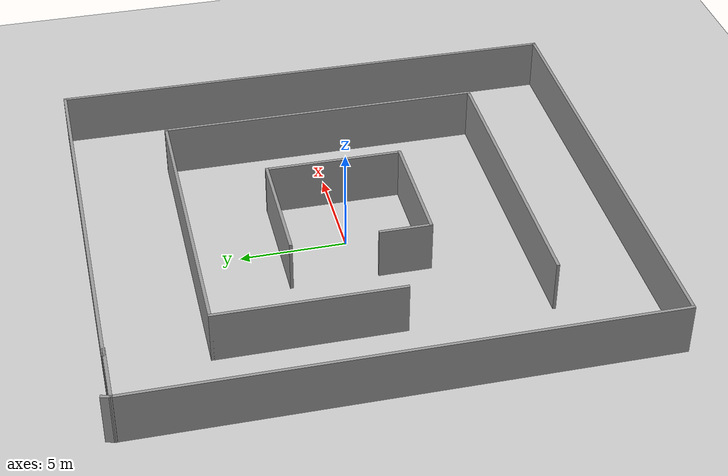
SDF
<sdf version="1.7">
 <world name="default">
  <light name="sun" type="directional">
   <pose>0 0 10 0 -0 0</pose>
   <diffuse>0.8 0.8 0.8 1</diffuse>
   <specular>0.2 0.2 0.2 1</specular>
   <attenuation>
    <range>1000</range>
    <constant>0.9</constant>
    <linear>0.01</linear>
    <quadratic>0.001</quadratic>
   </attenuation>
   <direction>-0.5 0.1 -0.9</direction>
   <spot><inner_angle>0</inner_angle><outer_angle>0</outer_angle><falloff>0</falloff></spot>
  </light>
  <model name="ground_plane">
   <static>1</static>
   <link name="link">
    <collision name="collision">
     <geometry><plane><normal>0 0 1</normal><size>100 100</size></plane></geometry>
     <surface><friction><ode><mu>100</mu><mu2>50</mu2></ode></friction></surface>
    </collision>
    <visual name="visual">
     <cast_shadows>0</cast_shadows>
     <geometry><plane><normal>0 0 1</normal><size>100 100</size></plane></geometry>
     <material>
      <script><uri>file://media/materials/scripts/gazebo.material</uri><name>Gazebo/Grey</name></script>
     </material>
    </visual>
   </link>
  </model>
  <gravity>0 0 -9.8</gravity>
  <magnetic_field>6e-06 2.3e-05 -4.2e-05</magnetic_field>
  <atmosphere type="adiabatic"/>
  <physics type="ode">
   <max_step_size>0.001</max_step_size>
   <real_time_factor>1</real_time_factor>
   <real_time_update_rate>1000</real_time_update_rate>
  </physics>
  <scene><ambient>0.4 0.4 0.4 1</ambient><background>0.7 0.7 0.7 1</background><shadows>1</shadows></scene>
  <spherical_coordinates>
   <surface_model>EARTH_WGS84</surface_model>
   <latitude_deg>0</latitude_deg>
   <longitude_deg>0</longitude_deg>
   <elevation>0</elevation>
   <heading_deg>0</heading_deg>
  </spherical_coordinates>
  <model name="optima_env02_clone">
   <pose>0.481411 -0.273219 0 0 -0 1.56452</pose>
   <link name="Wall_0">
    <collision name="Wall_0_Collision">
     <geometry><box><size>6 0.15 2.5</size></box></geometry>
     <pose>0 0 1.25 0 -0 0</pose>
    </collision>
    <visual name="Wall_0_Visual">
     <pose>0 0 1.25 0 -0 0</pose>
     <geometry><box><size>6 0.15 2.5</size></box></geometry>
     <material>
      <script><uri>file://media/materials/scripts/gazebo.material</uri><name>Gazebo/Grey</name></script>
      <ambient>1 1 1 1</ambient>
     </material>
     <meta><layer>0</layer></meta>
    </visual>
    <pose>-3.12276 0.089658 0 0 -0 1.5708</pose>
   </link>
   <link name="Wall_1">
    <collision name="Wall_1_Collision">
     <geometry><box><size>0.15 0.15 2.5</size></box></geometry>
     <pose>0 0 1.25 0 -0 0</pose>
    </collision>
    <visual name="Wall_1_Visual">
     <pose>0 0 1.25 0 -0 0</pose>
     <geometry><box><size>0.15 0.15 2.5</size></box></geometry>
     <material>
      <script><uri>file://media/materials/scripts/gazebo.material</uri><name>Gazebo/Grey</name></script>
      <ambient>1 1 1 1</ambient>
     </material>
     <meta><layer>0</layer></meta>
    </visual>
    <pose>-3.12276 3.01466 0 0 -0 0</pose>
   </link>
   <link name="Wall_10">
    <collision name="Wall_10_Collision">
     <geometry><box><size>14.25 0.15 2.5</size></box></geometry>
     <pose>0 0 1.25 0 -0 0</pose>
    </collision>
    <visual name="Wall_10_Visual">
     <pose>0 0 1.25 0 -0 0</pose>
     <geometry><box><size>14.25 0.15 2.5</size></box></geometry>
     <material>
      <script><uri>file://media/materials/scripts/gazebo.material</uri><name>Gazebo/Grey</name></script>
      <ambient>1 1 1 1</ambient>
     </material>
     <meta><layer>0</layer></meta>
    </visual>
    <pose>-7.78468 -0.071567 0 0 -0 1.5708</pose>
   </link>
   <link name="Wall_13">
    <collision name="Wall_13_Collision">
     <geometry><box><size>19.5 0.15 2.5</size></box></geometry>
     <pose>0 0 1.25 0 -0 0</pose>
    </collision>
    <visual name="Wall_13_Visual">
     <pose>0 0 1.25 0 -0 0</pose>
     <geometry><box><size>19.5 0.15 2.5</size></box></geometry>
     <material>
      <script><uri>file://media/materials/scripts/gazebo.material</uri><name>Gazebo/Grey</name></script>
      <ambient>1 1 1 1</ambient>
     </material>
     <meta><layer>0</layer></meta>
    </visual>
    <pose>12.1628 -1.22334 0 0 -0 -1.5708</pose>
   </link>
   <link name="Wall_14">
    <collision name="Wall_14_Collision">
     <geometry><box><size>24.7905 0.15 2.5</size></box></geometry>
     <pose>0 0 1.25 0 -0 0</pose>
    </collision>
    <visual name="Wall_14_Visual">
     <pose>0 0 1.25 0 -0 0</pose>
     <geometry><box><size>24.7905 0.15 2.5</size></box></geometry>
     <material>
      <script><uri>file://media/materials/scripts/gazebo.material</uri><name>Gazebo/Grey</name></script>
      <ambient>1 1 1 1</ambient>
     </material>
     <meta><layer>0</layer></meta>
    </visual>
    <pose>-0.157225 -10.9333 0 0 -0 3.13875</pose>
   </link>
   <link name="Wall_15">
    <collision name="Wall_15_Collision">
     <geometry><box><size>22 0.15 2.5</size></box></geometry>
     <pose>0 0 1.25 0 -0 0</pose>
    </collision>
    <visual name="Wall_15_Visual">
     <pose>0 0 1.25 0 -0 0</pose>
     <geometry><box><size>22 0.15 2.5</size></box></geometry>
     <material>
      <script><uri>file://media/materials/scripts/gazebo.material</uri><name>Gazebo/Grey</name></script>
      <ambient>1 1 1 1</ambient>
     </material>
     <meta><layer>0</layer></meta>
    </visual>
    <pose>-12.4773 0.026659 0 0 -0 1.5708</pose>
   </link>
   <link name="Wall_16">
    <collision name="Wall_16_Collision">
     <geometry><box><size>24.75 0.15 2.5</size></box></geometry>
     <pose>0 0 1.25 0 -0 0</pose>
    </collision>
    <visual name="Wall_16_Visual">
     <pose>0 0 1.25 0 -0 0</pose>
     <geometry><box><size>24.75 0.15 2.5</size></box></geometry>
     <material>
      <script><uri>file://media/materials/scripts/gazebo.material</uri><name>Gazebo/Grey</name></script>
      <ambient>1 1 1 1</ambient>
     </material>
     <meta><layer>0</layer></meta>
    </visual>
    <pose>-0.177285 10.9517 0 0 -0 0</pose>
   </link>
   <link name="Wall_17">
    <collision name="Wall_17_Collision">
     <geometry><box><size>0.5 0.15 2.5</size></box></geometry>
     <pose>0 0 1.25 0 -0 0</pose>
    </collision>
    <visual name="Wall_17_Visual">
     <pose>0 0 1.25 0 -0 0</pose>
     <geometry><box><size>0.5 0.15 2.5</size></box></geometry>
     <material>
      <script><uri>file://media/materials/scripts/gazebo.material</uri><name>Gazebo/Grey</name></script>
      <ambient>1 1 1 1</ambient>
     </material>
     <meta><layer>0</layer></meta>
    </visual>
    <pose>12.2918 10.9064 0 0 -0 -0.261799</pose>
   </link>
   <link name="Wall_2">
    <collision name="Wall_2_Collision">
     <geometry><box><size>2.5 0.15 2.5</size></box></geometry>
     <pose>0 0 1.25 0 -0 0</pose>
    </collision>
    <visual name="Wall_2_Visual">
     <pose>0 0 1.25 0 -0 0</pose>
     <geometry><box><size>2.5 0.15 2.5</size></box></geometry>
     <material>
      <script><uri>file://media/materials/scripts/gazebo.material</uri><name>Gazebo/Grey</name></script>
      <ambient>1 1 1 1</ambient>
     </material>
     <meta><layer>0</layer></meta>
    </visual>
    <pose>-1.94776 3.01466 0 0 -0 0</pose>
   </link>
   <link name="Wall_20">
    <collision name="Wall_20_Collision">
     <geometry><box><size>3 0.15 2.5</size></box></geometry>
     <pose>0 0 1.25 0 -0 0</pose>
    </collision>
    <visual name="Wall_20_Visual">
     <pose>0 0 1.25 0 -0 0</pose>
     <geometry><box><size>3 0.15 2.5</size></box></geometry>
     <material>
      <script><uri>file://media/materials/scripts/gazebo.material</uri><name>Gazebo/Grey</name></script>
      <ambient>1 1 1 1</ambient>
     </material>
     <meta><layer>0</layer></meta>
    </visual>
    <pose>12.1227 9.52666 0 0 -0 -1.5708</pose>
   </link>
   <link name="Wall_4">
    <collision name="Wall_4_Collision">
     <geometry><box><size>6 0.15 2.5</size></box></geometry>
     <pose>0 0 1.25 0 -0 0</pose>
    </collision>
    <visual name="Wall_4_Visual">
     <pose>0 0 1.25 0 -0 0</pose>
     <geometry><box><size>6 0.15 2.5</size></box></geometry>
     <material>
      <script><uri>file://media/materials/scripts/gazebo.material</uri><name>Gazebo/Grey</name></script>
      <ambient>1 1 1 1</ambient>
     </material>
     <meta><layer>0</layer></meta>
    </visual>
    <pose>3.34402 0.096282 0 0 -0 -1.5708</pose>
   </link>
   <link name="Wall_5">
    <collision name="Wall_5_Collision">
     <geometry><box><size>6.5 0.15 2.5</size></box></geometry>
     <pose>0 0 1.25 0 -0 0</pose>
    </collision>
    <visual name="Wall_5_Visual">
     <pose>0 0 1.25 0 -0 0</pose>
     <geometry><box><size>6.5 0.15 2.5</size></box></geometry>
     <material>
      <script><uri>file://media/materials/scripts/gazebo.material</uri><name>Gazebo/Grey</name></script>
      <ambient>1 1 1 1</ambient>
     </material>
     <meta><layer>0</layer></meta>
    </visual>
    <pose>0.169018 -2.82872 0 0 -0 3.14159</pose>
   </link>
   <link name="Wall_7">
    <collision name="Wall_7_Collision">
     <geometry><box><size>8.75 0.15 2.5</size></box></geometry>
     <pose>0 0 1.25 0 -0 0</pose>
    </collision>
    <visual name="Wall_7_Visual">
     <pose>0 0 1.25 0 -0 0</pose>
     <geometry><box><size>8.75 0.15 2.5</size></box></geometry>
     <material>
      <script><uri>file://media/materials/scripts/gazebo.material</uri><name>Gazebo/Grey</name></script>
      <ambient>1 1 1 1</ambient>
     </material>
     <meta><layer>0</layer></meta>
    </visual>
    <pose>3.26532 6.97843 0 0 -0 0</pose>
   </link>
   <link name="Wall_8">
    <collision name="Wall_8_Collision">
     <geometry><box><size>14.25 0.15 2.5</size></box></geometry>
     <pose>0 0 1.25 0 -0 0</pose>
    </collision>
    <visual name="Wall_8_Visual">
     <pose>0 0 1.25 0 -0 0</pose>
     <geometry><box><size>14.25 0.15 2.5</size></box></geometry>
     <material>
      <script><uri>file://media/materials/scripts/gazebo.material</uri><name>Gazebo/Grey</name></script>
      <ambient>1 1 1 1</ambient>
     </material>
     <meta><layer>0</layer></meta>
    </visual>
    <pose>7.56532 -0.071567 0 0 -0 -1.5708</pose>
   </link>
   <link name="Wall_9">
    <collision name="Wall_9_Collision">
     <geometry><box><size>15.5 0.15 2.5</size></box></geometry>
     <pose>0 0 1.25 0 -0 0</pose>
    </collision>
    <visual name="Wall_9_Visual">
     <pose>0 0 1.25 0 -0 0</pose>
     <geometry><box><size>15.5 0.15 2.5</size></box></geometry>
     <material>
      <script><uri>file://media/materials/scripts/gazebo.material</uri><name>Gazebo/Grey</name></script>
      <ambient>1 1 1 1</ambient>
     </material>
     <meta><layer>0</layer></meta>
    </visual>
    <pose>-0.109682 -7.12157 0 0 -0 3.14159</pose>
   </link>
   <static>1</static>
  </model>
 </world>
</sdf>
